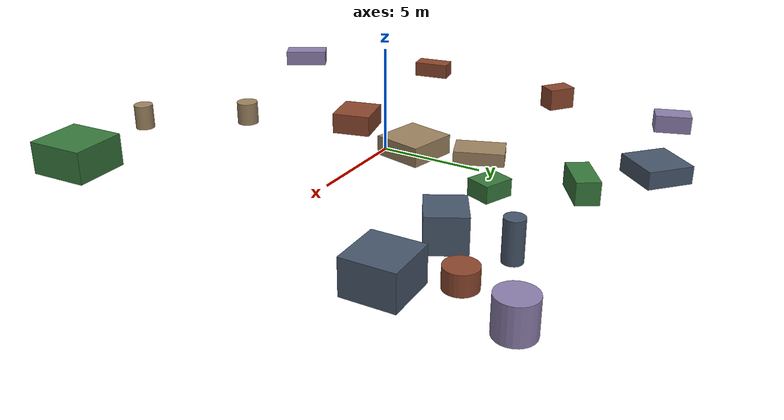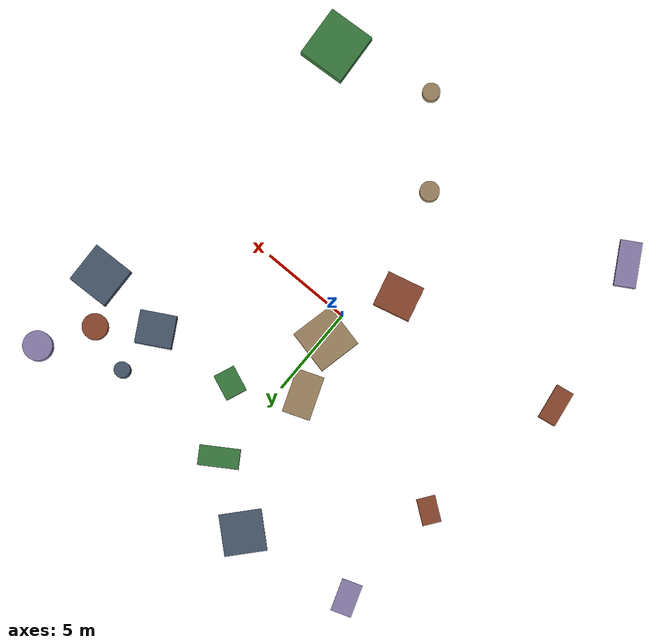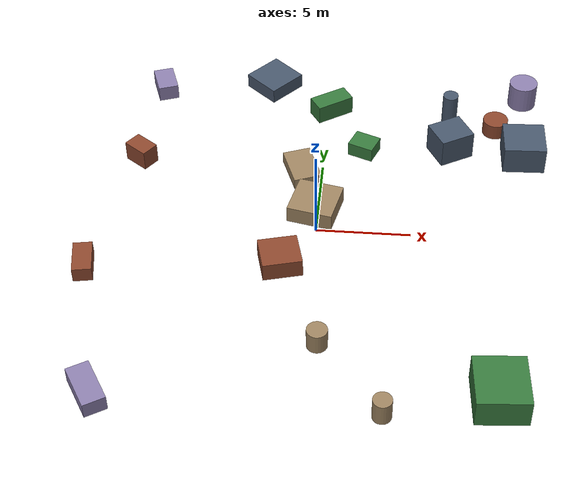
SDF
<sdf version="1.10">
 <world name="robotx_task1_uav_view">
  <gravity>0 0 -9.81</gravity>
  <physics name="physics" type="ode">
   <max_step_size>0.002</max_step_size>
   <real_time_factor>1.0</real_time_factor>
  </physics>
  <scene>
   <ambient>0.22 0.20 0.18 1.0</ambient>
   <background>0.74 0.55 0.44 1.0</background>
   <shadows>true</shadows>
   <grid>false</grid>
  </scene>
  <light name="sun" type="directional">
   <pose>0 0 300 0 0 0</pose>
   <diffuse>0.95 0.74 0.56 1.0</diffuse>
   <specular>1.00 0.87 0.71 1.0</specular>
   <direction>-0.40 0.20 -0.88</direction>
   <attenuation>
    <range>2500</range>
    <constant>0.85</constant>
    <linear>0.001</linear>
    <quadratic>0.00005</quadratic>
   </attenuation>
  </light>
  <plugin filename="gz-sim-physics-system" name="gz::sim::systems::Physics"/>
  <plugin filename="gz-sim-user-commands-system" name="gz::sim::systems::UserCommands"/>
  <plugin filename="gz-sim-scene-broadcaster-system" name="gz::sim::systems::SceneBroadcaster"/>
  <plugin filename="gz-sim-sensors-system" name="gz::sim::systems::Sensors">
   <render_engine>ogre2</render_engine>
  </plugin>
  <model name="scene_clutter_box_000">
   <static>true</static>
   <pose>-0.136 1.506 0.491 0 0 -0.219340</pose>
   <link name="link">
    <visual name="v">
     <geometry><box><size>2.453 2.400 0.942</size></box></geometry>
     <material><ambient>0.45 0.38 0.32 1.0</ambient><diffuse>0.62 0.52 0.38 1.0</diffuse></material>
    </visual>
   </link>
  </model>
  <model name="scene_clutter_cyl_001">
   <static>true</static>
   <pose>6.993 9.655 0.962 0 0 -0.697064</pose>
   <link name="link">
    <visual name="v">
     <geometry><cylinder><radius>0.431</radius><length>1.824</length></cylinder></geometry>
     <material><ambient>0.18 0.22 0.28 1.0</ambient><diffuse>0.28 0.34 0.42 1.0</diffuse></material>
    </visual>
   </link>
  </model>
  <model name="scene_clutter_cyl_002">
   <static>true</static>
   <pose>9.598 8.833 0.495 0 0 -2.765310</pose>
   <link name="link">
    <visual name="v">
     <geometry><cylinder><radius>0.700</radius><length>0.889</length></cylinder></geometry>
     <material><ambient>0.35 0.16 0.12 1.0</ambient><diffuse>0.55 0.28 0.18 1.0</diffuse></material>
    </visual>
   </link>
  </model>
  <model name="scene_clutter_box_003">
   <static>true</static>
   <pose>0.167 9.898 0.557 0 0 2.143468</pose>
   <link name="link">
    <visual name="v">
     <geometry><box><size>1.072 2.175 1.073</size></box></geometry>
     <material><ambient>0.12 0.30 0.14 1.0</ambient><diffuse>0.22 0.48 0.24 1.0</diffuse></material>
    </visual>
   </link>
  </model>
  <model name="scene_clutter_cyl_004">
   <static>true</static>
   <pose>11.228 11.547 0.801 0 0 1.636740</pose>
   <link name="link">
    <visual name="v">
     <geometry><cylinder><radius>0.795</radius><length>1.503</length></cylinder></geometry>
     <material><ambient>0.40 0.35 0.50 1.0</ambient><diffuse>0.55 0.50 0.68 1.0</diffuse></material>
    </visual>
   </link>
  </model>
  <model name="scene_clutter_cyl_005">
   <static>true</static>
   <pose>0.668 -7.973 0.614 0 0 -0.614264</pose>
   <link name="link">
    <visual name="v">
     <geometry><cylinder><radius>0.532</radius><length>1.129</length></cylinder></geometry>
     <material><ambient>0.45 0.38 0.32 1.0</ambient><diffuse>0.62 0.52 0.38 1.0</diffuse></material>
    </visual>
   </link>
  </model>
  <model name="scene_clutter_box_006">
   <static>true</static>
   <pose>-3.354 12.135 0.442 0 0 0.844696</pose>
   <link name="link">
    <visual name="v">
     <geometry><box><size>2.272 2.233 0.843</size></box></geometry>
     <material><ambient>0.18 0.22 0.28 1.0</ambient><diffuse>0.28 0.34 0.42 1.0</diffuse></material>
    </visual>
   </link>
  </model>
  <model name="scene_clutter_box_007">
   <static>true</static>
   <pose>-1.639 -2.670 0.534 0 0 -1.321147</pose>
   <link name="link">
    <visual name="v">
     <geometry><box><size>1.916 2.072 1.029</size></box></geometry>
     <material><ambient>0.35 0.16 0.12 1.0</ambient><diffuse>0.55 0.28 0.18 1.0</diffuse></material>
    </visual>
   </link>
  </model>
  <model name="scene_clutter_box_008">
   <static>true</static>
   <pose>2.231 6.537 0.421 0 0 -0.381592</pose>
   <link name="link">
    <visual name="v">
     <geometry><box><size>1.442 1.194 0.801</size></box></geometry>
     <material><ambient>0.12 0.30 0.14 1.0</ambient><diffuse>0.22 0.48 0.24 1.0</diffuse></material>
    </visual>
   </link>
  </model>
  <model name="scene_clutter_box_009">
   <static>true</static>
   <pose>-9.742 11.258 0.464 0 0 -2.804134</pose>
   <link name="link">
    <visual name="v">
     <geometry><box><size>1.134 1.775 0.888</size></box></geometry>
     <material><ambient>0.40 0.35 0.50 1.0</ambient><diffuse>0.55 0.50 0.68 1.0</diffuse></material>
    </visual>
   </link>
  </model>
  <model name="scene_clutter_cyl_010">
   <static>true</static>
   <pose>3.971 -12.052 0.667 0 0 2.265852</pose>
   <link name="link">
    <visual name="v">
     <geometry><cylinder><radius>0.475</radius><length>1.235</length></cylinder></geometry>
     <material><ambient>0.45 0.38 0.32 1.0</ambient><diffuse>0.62 0.52 0.38 1.0</diffuse></material>
    </visual>
   </link>
  </model>
  <model name="scene_clutter_box_011">
   <static>true</static>
   <pose>11.082 6.584 0.802 0 0 -1.539808</pose>
   <link name="link">
    <visual name="v">
     <geometry><box><size>2.283 2.297 1.563</size></box></geometry>
     <material><ambient>0.18 0.22 0.28 1.0</ambient><diffuse>0.28 0.34 0.42 1.0</diffuse></material>
    </visual>
   </link>
  </model>
  <model name="scene_clutter_box_012">
   <static>true</static>
   <pose>-10.104 4.953 0.587 0 0 -0.632176</pose>
   <link name="link">
    <visual name="v">
     <geometry><box><size>1.443 0.999 1.133</size></box></geometry>
     <material><ambient>0.35 0.16 0.12 1.0</ambient><diffuse>0.55 0.28 0.18 1.0</diffuse></material>
    </visual>
   </link>
  </model>
  <model name="scene_clutter_box_013">
   <static>true</static>
   <pose>9.383 -10.710 0.796 0 0 -1.502247</pose>
   <link name="link">
    <visual name="v">
     <geometry><box><size>2.838 2.601 1.552</size></box></geometry>
     <material><ambient>0.12 0.30 0.14 1.0</ambient><diffuse>0.22 0.48 0.24 1.0</diffuse></material>
    </visual>
   </link>
  </model>
  <model name="scene_clutter_box_014">
   <static>true</static>
   <pose>-9.820 -11.774 0.446 0 0 -1.033987</pose>
   <link name="link">
    <visual name="v">
     <geometry><box><size>2.438 1.170 0.852</size></box></geometry>
     <material><ambient>0.40 0.35 0.50 1.0</ambient><diffuse>0.55 0.50 0.68 1.0</diffuse></material>
    </visual>
   </link>
  </model>
  <model name="scene_clutter_box_015">
   <static>true</static>
   <pose>-1.100 4.518 0.335 0 0 1.933871</pose>
   <link name="link">
    <visual name="v">
     <geometry><box><size>2.385 1.536 0.630</size></box></geometry>
     <material><ambient>0.45 0.38 0.32 1.0</ambient><diffuse>0.62 0.52 0.38 1.0</diffuse></material>
    </visual>
   </link>
  </model>
  <model name="scene_clutter_box_016">
   <static>true</static>
   <pose>7.022 6.891 0.825 0 0 2.079812</pose>
   <link name="link">
    <visual name="v">
     <geometry><box><size>1.748 1.957 1.610</size></box></geometry>
     <material><ambient>0.18 0.22 0.28 1.0</ambient><diffuse>0.28 0.34 0.42 1.0</diffuse></material>
    </visual>
   </link>
  </model>
  <model name="scene_clutter_box_017">
   <static>true</static>
   <pose>-11.684 -3.597 0.431 0 0 -1.406316</pose>
   <link name="link">
    <visual name="v">
     <geometry><box><size>1.954 1.005 0.822</size></box></geometry>
     <material><ambient>0.35 0.16 0.12 1.0</ambient><diffuse>0.55 0.28 0.18 1.0</diffuse></material>
    </visual>
   </link>
  </model>
  <model name="uav_dataset_camera">
   <static>false</static>
   <pose>0 0 26 0 0 0</pose>
   <plugin filename="librobotx_overhead_motion_plugin.dylib" name="robotx::OverheadMotionPlugin">
    <radius_x_m>9.82745</radius_x_m>
    <radius_y_m>7.65779</radius_y_m>
    <angular_speed_rad_s>0.069823</angular_speed_rad_s>
    <phase_rad>0.517802</phase_rad>
    <z_wobble_m>0.04792</z_wobble_m>
    <z_wobble_hz>0.07622</z_wobble_hz>
    <z_wobble_phase_rad>1.359288</z_wobble_phase_rad>
   </plugin>
   <link name="camera_link">
    <gravity>false</gravity>
    <sensor name="top_down_rgb" type="camera">
     <always_on>true</always_on>
     <update_rate>20</update_rate>
     <pose>0 0 0 0 1.57079632679 0</pose>
     <camera>
      <horizontal_fov>1.05</horizontal_fov>
      <image><width>1920</width><height>1080</height><format>R8G8B8</format></image>
      <clip><near>0.2</near><far>600</far></clip>
     </camera>
     <topic>/robotx/uav/camera/image_raw</topic>
     <visualize>true</visualize>
    </sensor>
   </link>
  </model>
 </world>
</sdf>
